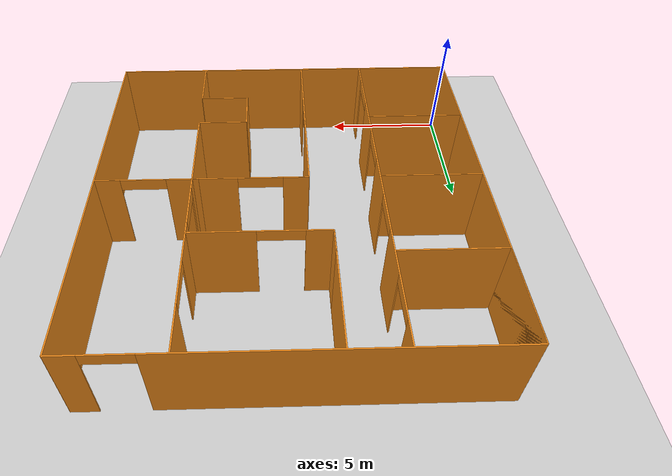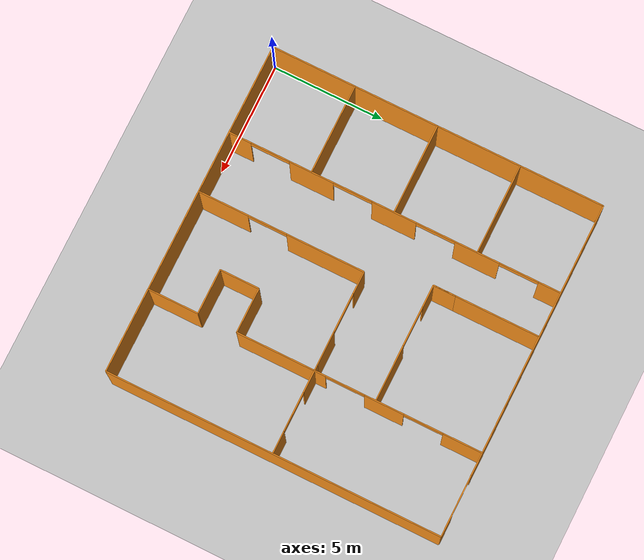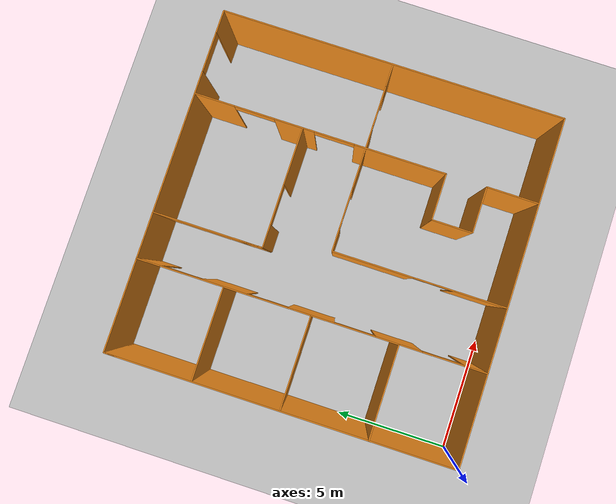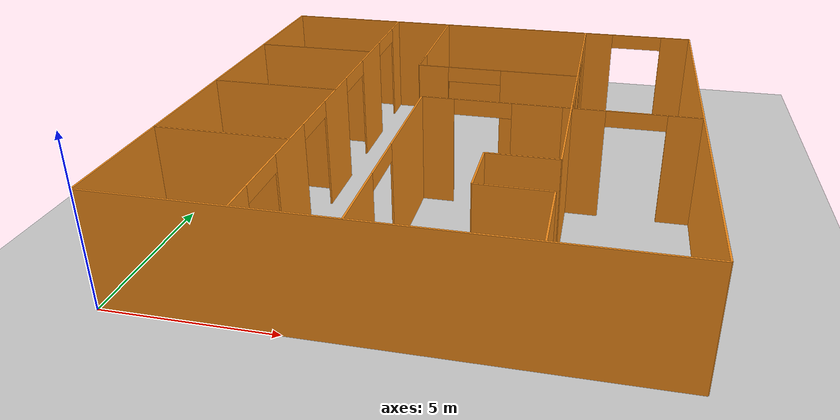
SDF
<sdf version="1.6">
  <world name="default">
    <model name="box_43">
  <pose frame="">11.25 8.875 3.25 0 0 -1.5707963267948966</pose>
  <link name="link">
    <inertial>
      <mass>1</mass>
      <inertia>
        <ixx>0</ixx>
        <ixy>0</ixy>
        <ixz>0</ixz>
        <iyy>0</iyy>
        <iyz>0</iyz>
        <izz>0</izz>
      </inertia>
    </inertial>
    <collision name="collision">
      <geometry>
        <box>
          <size>1.75 0.05 0.5</size>
        </box>
      </geometry>
      <max_contacts>10</max_contacts>
      <surface>
        <contact>
          <ode/>
        </contact>
        <bounce/>
        <friction>
          <torsional>
            <ode/>
          </torsional>
          <ode/>
        </friction>
      </surface>
    </collision>
    <visual name="visual">
      <geometry>
        <box>
          <size>1.75 0.05 0.5</size>
        </box>
      </geometry>
      <material>
        <script>
          <name>Gazebo/Orange</name>
          <uri>file://media/materials/scripts/gazebo.material</uri>
        </script>
      </material>
    </visual>
    <self_collide>0</self_collide>
    <enable_wind>0</enable_wind>
    <kinematic>0</kinematic>
  </link>
	<static>1</static>
</model><model name="box_42">
  <pose frame="">11.25 12.375 3.25 0 0 -1.5707963267948966</pose>
  <link name="link">
    <inertial>
      <mass>1</mass>
      <inertia>
        <ixx>0</ixx>
        <ixy>0</ixy>
        <ixz>0</ixz>
        <iyy>0</iyy>
        <iyz>0</iyz>
        <izz>0</izz>
      </inertia>
    </inertial>
    <collision name="collision">
      <geometry>
        <box>
          <size>1.75 0.05 0.5</size>
        </box>
      </geometry>
      <max_contacts>10</max_contacts>
      <surface>
        <contact>
          <ode/>
        </contact>
        <bounce/>
        <friction>
          <torsional>
            <ode/>
          </torsional>
          <ode/>
        </friction>
      </surface>
    </collision>
    <visual name="visual">
      <geometry>
        <box>
          <size>1.75 0.05 0.5</size>
        </box>
      </geometry>
      <material>
        <script>
          <name>Gazebo/Orange</name>
          <uri>file://media/materials/scripts/gazebo.material</uri>
        </script>
      </material>
    </visual>
    <self_collide>0</self_collide>
    <enable_wind>0</enable_wind>
    <kinematic>0</kinematic>
  </link>
	<static>1</static>
</model><model name="box_41">
  <pose frame="">4.0 13.125 3.25 0 0 -1.5707963267948966</pose>
  <link name="link">
    <inertial>
      <mass>1</mass>
      <inertia>
        <ixx>0</ixx>
        <ixy>0</ixy>
        <ixz>0</ixz>
        <iyy>0</iyy>
        <iyz>0</iyz>
        <izz>0</izz>
      </inertia>
    </inertial>
    <collision name="collision">
      <geometry>
        <box>
          <size>1.75 0.05 0.5</size>
        </box>
      </geometry>
      <max_contacts>10</max_contacts>
      <surface>
        <contact>
          <ode/>
        </contact>
        <bounce/>
        <friction>
          <torsional>
            <ode/>
          </torsional>
          <ode/>
        </friction>
      </surface>
    </collision>
    <visual name="visual">
      <geometry>
        <box>
          <size>1.75 0.05 0.5</size>
        </box>
      </geometry>
      <material>
        <script>
          <name>Gazebo/Orange</name>
          <uri>file://media/materials/scripts/gazebo.material</uri>
        </script>
      </material>
    </visual>
    <self_collide>0</self_collide>
    <enable_wind>0</enable_wind>
    <kinematic>0</kinematic>
  </link>
	<static>1</static>
</model><model name="box_40">
  <pose frame="">4.0 9.375 3.25 0 0 1.5707963267948966</pose>
  <link name="link">
    <inertial>
      <mass>1</mass>
      <inertia>
        <ixx>0</ixx>
        <ixy>0</ixy>
        <ixz>0</ixz>
        <iyy>0</iyy>
        <iyz>0</iyz>
        <izz>0</izz>
      </inertia>
    </inertial>
    <collision name="collision">
      <geometry>
        <box>
          <size>1.75 0.05 0.5</size>
        </box>
      </geometry>
      <max_contacts>10</max_contacts>
      <surface>
        <contact>
          <ode/>
        </contact>
        <bounce/>
        <friction>
          <torsional>
            <ode/>
          </torsional>
          <ode/>
        </friction>
      </surface>
    </collision>
    <visual name="visual">
      <geometry>
        <box>
          <size>1.75 0.05 0.5</size>
        </box>
      </geometry>
      <material>
        <script>
          <name>Gazebo/Orange</name>
          <uri>file://media/materials/scripts/gazebo.material</uri>
        </script>
      </material>
    </visual>
    <self_collide>0</self_collide>
    <enable_wind>0</enable_wind>
    <kinematic>0</kinematic>
  </link>
	<static>1</static>
</model><model name="box_39">
  <pose frame="">4.0 5.625 3.25 0 0 -1.5707963267948966</pose>
  <link name="link">
    <inertial>
      <mass>1</mass>
      <inertia>
        <ixx>0</ixx>
        <ixy>0</ixy>
        <ixz>0</ixz>
        <iyy>0</iyy>
        <iyz>0</iyz>
        <izz>0</izz>
      </inertia>
    </inertial>
    <collision name="collision">
      <geometry>
        <box>
          <size>1.75 0.05 0.5</size>
        </box>
      </geometry>
      <max_contacts>10</max_contacts>
      <surface>
        <contact>
          <ode/>
        </contact>
        <bounce/>
        <friction>
          <torsional>
            <ode/>
          </torsional>
          <ode/>
        </friction>
      </surface>
    </collision>
    <visual name="visual">
      <geometry>
        <box>
          <size>1.75 0.05 0.5</size>
        </box>
      </geometry>
      <material>
        <script>
          <name>Gazebo/Orange</name>
          <uri>file://media/materials/scripts/gazebo.material</uri>
        </script>
      </material>
    </visual>
    <self_collide>0</self_collide>
    <enable_wind>0</enable_wind>
    <kinematic>0</kinematic>
  </link>
	<static>1</static>
</model><model name="box_38">
  <pose frame="">4.0 1.875 3.25 0 0 1.5707963267948966</pose>
  <link name="link">
    <inertial>
      <mass>1</mass>
      <inertia>
        <ixx>0</ixx>
        <ixy>0</ixy>
        <ixz>0</ixz>
        <iyy>0</iyy>
        <iyz>0</iyz>
        <izz>0</izz>
      </inertia>
    </inertial>
    <collision name="collision">
      <geometry>
        <box>
          <size>1.75 0.05 0.5</size>
        </box>
      </geometry>
      <max_contacts>10</max_contacts>
      <surface>
        <contact>
          <ode/>
        </contact>
        <bounce/>
        <friction>
          <torsional>
            <ode/>
          </torsional>
          <ode/>
        </friction>
      </surface>
    </collision>
    <visual name="visual">
      <geometry>
        <box>
          <size>1.75 0.05 0.5</size>
        </box>
      </geometry>
      <material>
        <script>
          <name>Gazebo/Orange</name>
          <uri>file://media/materials/scripts/gazebo.material</uri>
        </script>
      </material>
    </visual>
    <self_collide>0</self_collide>
    <enable_wind>0</enable_wind>
    <kinematic>0</kinematic>
  </link>
	<static>1</static>
</model><model name="box_37">
  <pose frame="">8.625 7.5 3.25 0 0 -0.0</pose>
  <link name="link">
    <inertial>
      <mass>1</mass>
      <inertia>
        <ixx>0</ixx>
        <ixy>0</ixy>
        <ixz>0</ixz>
        <iyy>0</iyy>
        <iyz>0</iyz>
        <izz>0</izz>
      </inertia>
    </inertial>
    <collision name="collision">
      <geometry>
        <box>
          <size>1.75 0.05 0.5</size>
        </box>
      </geometry>
      <max_contacts>10</max_contacts>
      <surface>
        <contact>
          <ode/>
        </contact>
        <bounce/>
        <friction>
          <torsional>
            <ode/>
          </torsional>
          <ode/>
        </friction>
      </surface>
    </collision>
    <visual name="visual">
      <geometry>
        <box>
          <size>1.75 0.05 0.5</size>
        </box>
      </geometry>
      <material>
        <script>
          <name>Gazebo/Orange</name>
          <uri>file://media/materials/scripts/gazebo.material</uri>
        </script>
      </material>
    </visual>
    <self_collide>0</self_collide>
    <enable_wind>0</enable_wind>
    <kinematic>0</kinematic>
  </link>
	<static>1</static>
</model><model name="box_36">
  <pose frame="">7.875 10.25 3.25 0 0 -3.141592653589793</pose>
  <link name="link">
    <inertial>
      <mass>1</mass>
      <inertia>
        <ixx>0</ixx>
        <ixy>0</ixy>
        <ixz>0</ixz>
        <iyy>0</iyy>
        <iyz>0</iyz>
        <izz>0</izz>
      </inertia>
    </inertial>
    <collision name="collision">
      <geometry>
        <box>
          <size>1.75 0.05 0.5</size>
        </box>
      </geometry>
      <max_contacts>10</max_contacts>
      <surface>
        <contact>
          <ode/>
        </contact>
        <bounce/>
        <friction>
          <torsional>
            <ode/>
          </torsional>
          <ode/>
        </friction>
      </surface>
    </collision>
    <visual name="visual">
      <geometry>
        <box>
          <size>1.75 0.05 0.5</size>
        </box>
      </geometry>
      <material>
        <script>
          <name>Gazebo/Orange</name>
          <uri>file://media/materials/scripts/gazebo.material</uri>
        </script>
      </material>
    </visual>
    <self_collide>0</self_collide>
    <enable_wind>0</enable_wind>
    <kinematic>0</kinematic>
  </link>
	<static>1</static>
</model><model name="box_35">
  <pose frame="">6.75 3.125 3.25 0 0 1.5707963267948966</pose>
  <link name="link">
    <inertial>
      <mass>1</mass>
      <inertia>
        <ixx>0</ixx>
        <ixy>0</ixy>
        <ixz>0</ixz>
        <iyy>0</iyy>
        <iyz>0</iyz>
        <izz>0</izz>
      </inertia>
    </inertial>
    <collision name="collision">
      <geometry>
        <box>
          <size>1.75 0.05 0.5</size>
        </box>
      </geometry>
      <max_contacts>10</max_contacts>
      <surface>
        <contact>
          <ode/>
        </contact>
        <bounce/>
        <friction>
          <torsional>
            <ode/>
          </torsional>
          <ode/>
        </friction>
      </surface>
    </collision>
    <visual name="visual">
      <geometry>
        <box>
          <size>1.75 0.05 0.5</size>
        </box>
      </geometry>
      <material>
        <script>
          <name>Gazebo/Orange</name>
          <uri>file://media/materials/scripts/gazebo.material</uri>
        </script>
      </material>
    </visual>
    <self_collide>0</self_collide>
    <enable_wind>0</enable_wind>
    <kinematic>0</kinematic>
  </link>
	<static>1</static>
</model><model name="box_34">
  <pose frame="">13.125 7.5 3.25 0 0 -0.0</pose>
  <link name="link">
    <inertial>
      <mass>1</mass>
      <inertia>
        <ixx>0</ixx>
        <ixy>0</ixy>
        <ixz>0</ixz>
        <iyy>0</iyy>
        <iyz>0</iyz>
        <izz>0</izz>
      </inertia>
    </inertial>
    <collision name="collision">
      <geometry>
        <box>
          <size>1.75 0.05 0.5</size>
        </box>
      </geometry>
      <max_contacts>10</max_contacts>
      <surface>
        <contact>
          <ode/>
        </contact>
        <bounce/>
        <friction>
          <torsional>
            <ode/>
          </torsional>
          <ode/>
        </friction>
      </surface>
    </collision>
    <visual name="visual">
      <geometry>
        <box>
          <size>1.75 0.05 0.5</size>
        </box>
      </geometry>
      <material>
        <script>
          <name>Gazebo/Orange</name>
          <uri>file://media/materials/scripts/gazebo.material</uri>
        </script>
      </material>
    </visual>
    <self_collide>0</self_collide>
    <enable_wind>0</enable_wind>
    <kinematic>0</kinematic>
  </link>
	<static>1</static>
</model><model name="box_33">
  <pose frame="">13.125 15.0 3.25 0 0 -0.0</pose>
  <link name="link">
    <inertial>
      <mass>1</mass>
      <inertia>
        <ixx>0</ixx>
        <ixy>0</ixy>
        <ixz>0</ixz>
        <iyy>0</iyy>
        <iyz>0</iyz>
        <izz>0</izz>
      </inertia>
    </inertial>
    <collision name="collision">
      <geometry>
        <box>
          <size>1.75 0.05 0.5</size>
        </box>
      </geometry>
      <max_contacts>10</max_contacts>
      <surface>
        <contact>
          <ode/>
        </contact>
        <bounce/>
        <friction>
          <torsional>
            <ode/>
          </torsional>
          <ode/>
        </friction>
      </surface>
    </collision>
    <visual name="visual">
      <geometry>
        <box>
          <size>1.75 0.05 0.5</size>
        </box>
      </geometry>
      <material>
        <script>
          <name>Gazebo/Orange</name>
          <uri>file://media/materials/scripts/gazebo.material</uri>
        </script>
      </material>
    </visual>
    <self_collide>0</self_collide>
    <enable_wind>0</enable_wind>
    <kinematic>0</kinematic>
  </link>
	<static>1</static>
</model><model name="box_32">
  <pose frame="">11.25 1.125 1.75 0 0 1.5707963267948966</pose>
  <link name="link">
    <inertial>
      <mass>1</mass>
      <inertia>
        <ixx>0</ixx>
        <ixy>0</ixy>
        <ixz>0</ixz>
        <iyy>0</iyy>
        <iyz>0</iyz>
        <izz>0</izz>
      </inertia>
    </inertial>
    <collision name="collision">
      <geometry>
        <box>
          <size>2.25 0.05 3.5</size>
        </box>
      </geometry>
      <max_contacts>10</max_contacts>
      <surface>
        <contact>
          <ode/>
        </contact>
        <bounce/>
        <friction>
          <torsional>
            <ode/>
          </torsional>
          <ode/>
        </friction>
      </surface>
    </collision>
    <visual name="visual">
      <geometry>
        <box>
          <size>2.25 0.05 3.5</size>
        </box>
      </geometry>
      <material>
        <script>
          <name>Gazebo/Orange</name>
          <uri>file://media/materials/scripts/gazebo.material</uri>
        </script>
      </material>
    </visual>
    <self_collide>0</self_collide>
    <enable_wind>0</enable_wind>
    <kinematic>0</kinematic>
  </link>
	<static>1</static>
</model><model name="box_31">
  <pose frame="">10.25 2.25 1.75 0 0 -3.141592653589793</pose>
  <link name="link">
    <inertial>
      <mass>1</mass>
      <inertia>
        <ixx>0</ixx>
        <ixy>0</ixy>
        <ixz>0</ixz>
        <iyy>0</iyy>
        <iyz>0</iyz>
        <izz>0</izz>
      </inertia>
    </inertial>
    <collision name="collision">
      <geometry>
        <box>
          <size>2.0 0.05 3.5</size>
        </box>
      </geometry>
      <max_contacts>10</max_contacts>
      <surface>
        <contact>
          <ode/>
        </contact>
        <bounce/>
        <friction>
          <torsional>
            <ode/>
          </torsional>
          <ode/>
        </friction>
      </surface>
    </collision>
    <visual name="visual">
      <geometry>
        <box>
          <size>2.0 0.05 3.5</size>
        </box>
      </geometry>
      <material>
        <script>
          <name>Gazebo/Orange</name>
          <uri>file://media/materials/scripts/gazebo.material</uri>
        </script>
      </material>
    </visual>
    <self_collide>0</self_collide>
    <enable_wind>0</enable_wind>
    <kinematic>0</kinematic>
  </link>
	<static>1</static>
</model><model name="box_30">
  <pose frame="">9.25 3.125 1.75 0 0 1.5707963267948966</pose>
  <link name="link">
    <inertial>
      <mass>1</mass>
      <inertia>
        <ixx>0</ixx>
        <ixy>0</ixy>
        <ixz>0</ixz>
        <iyy>0</iyy>
        <iyz>0</iyz>
        <izz>0</izz>
      </inertia>
    </inertial>
    <collision name="collision">
      <geometry>
        <box>
          <size>1.75 0.05 3.5</size>
        </box>
      </geometry>
      <max_contacts>10</max_contacts>
      <surface>
        <contact>
          <ode/>
        </contact>
        <bounce/>
        <friction>
          <torsional>
            <ode/>
          </torsional>
          <ode/>
        </friction>
      </surface>
    </collision>
    <visual name="visual">
      <geometry>
        <box>
          <size>1.75 0.05 3.5</size>
        </box>
      </geometry>
      <material>
        <script>
          <name>Gazebo/Orange</name>
          <uri>file://media/materials/scripts/gazebo.material</uri>
        </script>
      </material>
    </visual>
    <self_collide>0</self_collide>
    <enable_wind>0</enable_wind>
    <kinematic>0</kinematic>
  </link>
	<static>1</static>
</model><model name="box_29">
  <pose frame="">10.25 4.0 1.75 0 0 -0.0</pose>
  <link name="link">
    <inertial>
      <mass>1</mass>
      <inertia>
        <ixx>0</ixx>
        <ixy>0</ixy>
        <ixz>0</ixz>
        <iyy>0</iyy>
        <iyz>0</iyz>
        <izz>0</izz>
      </inertia>
    </inertial>
    <collision name="collision">
      <geometry>
        <box>
          <size>2.0 0.05 3.5</size>
        </box>
      </geometry>
      <max_contacts>10</max_contacts>
      <surface>
        <contact>
          <ode/>
        </contact>
        <bounce/>
        <friction>
          <torsional>
            <ode/>
          </torsional>
          <ode/>
        </friction>
      </surface>
    </collision>
    <visual name="visual">
      <geometry>
        <box>
          <size>2.0 0.05 3.5</size>
        </box>
      </geometry>
      <material>
        <script>
          <name>Gazebo/Orange</name>
          <uri>file://media/materials/scripts/gazebo.material</uri>
        </script>
      </material>
    </visual>
    <self_collide>0</self_collide>
    <enable_wind>0</enable_wind>
    <kinematic>0</kinematic>
  </link>
	<static>1</static>
</model><model name="box_28">
  <pose frame="">11.25 6.0 1.75 0 0 1.5707963267948966</pose>
  <link name="link">
    <inertial>
      <mass>1</mass>
      <inertia>
        <ixx>0</ixx>
        <ixy>0</ixy>
        <ixz>0</ixz>
        <iyy>0</iyy>
        <iyz>0</iyz>
        <izz>0</izz>
      </inertia>
    </inertial>
    <collision name="collision">
      <geometry>
        <box>
          <size>4.0 0.05 3.5</size>
        </box>
      </geometry>
      <max_contacts>10</max_contacts>
      <surface>
        <contact>
          <ode/>
        </contact>
        <bounce/>
        <friction>
          <torsional>
            <ode/>
          </torsional>
          <ode/>
        </friction>
      </surface>
    </collision>
    <visual name="visual">
      <geometry>
        <box>
          <size>4.0 0.05 3.5</size>
        </box>
      </geometry>
      <material>
        <script>
          <name>Gazebo/Orange</name>
          <uri>file://media/materials/scripts/gazebo.material</uri>
        </script>
      </material>
    </visual>
    <self_collide>0</self_collide>
    <enable_wind>0</enable_wind>
    <kinematic>0</kinematic>
  </link>
	<static>1</static>
</model><model name="box_27">
  <pose frame="">10.0 10.25 1.75 0 0 -0.0</pose>
  <link name="link">
    <inertial>
      <mass>1</mass>
      <inertia>
        <ixx>0</ixx>
        <ixy>0</ixy>
        <ixz>0</ixz>
        <iyy>0</iyy>
        <iyz>0</iyz>
        <izz>0</izz>
      </inertia>
    </inertial>
    <collision name="collision">
      <geometry>
        <box>
          <size>2.5 0.05 3.5</size>
        </box>
      </geometry>
      <max_contacts>10</max_contacts>
      <surface>
        <contact>
          <ode/>
        </contact>
        <bounce/>
        <friction>
          <torsional>
            <ode/>
          </torsional>
          <ode/>
        </friction>
      </surface>
    </collision>
    <visual name="visual">
      <geometry>
        <box>
          <size>2.5 0.05 3.5</size>
        </box>
      </geometry>
      <material>
        <script>
          <name>Gazebo/Orange</name>
          <uri>file://media/materials/scripts/gazebo.material</uri>
        </script>
      </material>
    </visual>
    <self_collide>0</self_collide>
    <enable_wind>0</enable_wind>
    <kinematic>0</kinematic>
  </link>
	<static>1</static>
</model><model name="box_26">
  <pose frame="">11.25 10.625 1.75 0 0 -1.5707963267948966</pose>
  <link name="link">
    <inertial>
      <mass>1</mass>
      <inertia>
        <ixx>0</ixx>
        <ixy>0</ixy>
        <ixz>0</ixz>
        <iyy>0</iyy>
        <iyz>0</iyz>
        <izz>0</izz>
      </inertia>
    </inertial>
    <collision name="collision">
      <geometry>
        <box>
          <size>1.75 0.05 3.5</size>
        </box>
      </geometry>
      <max_contacts>10</max_contacts>
      <surface>
        <contact>
          <ode/>
        </contact>
        <bounce/>
        <friction>
          <torsional>
            <ode/>
          </torsional>
          <ode/>
        </friction>
      </surface>
    </collision>
    <visual name="visual">
      <geometry>
        <box>
          <size>1.75 0.05 3.5</size>
        </box>
      </geometry>
      <material>
        <script>
          <name>Gazebo/Orange</name>
          <uri>file://media/materials/scripts/gazebo.material</uri>
        </script>
      </material>
    </visual>
    <self_collide>0</self_collide>
    <enable_wind>0</enable_wind>
    <kinematic>0</kinematic>
  </link>
	<static>1</static>
</model><model name="box_25">
  <pose frame="">11.25 14.125 1.75 0 0 -1.5707963267948966</pose>
  <link name="link">
    <inertial>
      <mass>1</mass>
      <inertia>
        <ixx>0</ixx>
        <ixy>0</ixy>
        <ixz>0</ixz>
        <iyy>0</iyy>
        <iyz>0</iyz>
        <izz>0</izz>
      </inertia>
    </inertial>
    <collision name="collision">
      <geometry>
        <box>
          <size>1.75 0.05 3.5</size>
        </box>
      </geometry>
      <max_contacts>10</max_contacts>
      <surface>
        <contact>
          <ode/>
        </contact>
        <bounce/>
        <friction>
          <torsional>
            <ode/>
          </torsional>
          <ode/>
        </friction>
      </surface>
    </collision>
    <visual name="visual">
      <geometry>
        <box>
          <size>1.75 0.05 3.5</size>
        </box>
      </geometry>
      <material>
        <script>
          <name>Gazebo/Orange</name>
          <uri>file://media/materials/scripts/gazebo.material</uri>
        </script>
      </material>
    </visual>
    <self_collide>0</self_collide>
    <enable_wind>0</enable_wind>
    <kinematic>0</kinematic>
  </link>
	<static>1</static>
</model><model name="box_24">
  <pose frame="">2.0 11.25 1.75 0 0 -0.0</pose>
  <link name="link">
    <inertial>
      <mass>1</mass>
      <inertia>
        <ixx>0</ixx>
        <ixy>0</ixy>
        <ixz>0</ixz>
        <iyy>0</iyy>
        <iyz>0</iyz>
        <izz>0</izz>
      </inertia>
    </inertial>
    <collision name="collision">
      <geometry>
        <box>
          <size>4.0 0.05 3.5</size>
        </box>
      </geometry>
      <max_contacts>10</max_contacts>
      <surface>
        <contact>
          <ode/>
        </contact>
        <bounce/>
        <friction>
          <torsional>
            <ode/>
          </torsional>
          <ode/>
        </friction>
      </surface>
    </collision>
    <visual name="visual">
      <geometry>
        <box>
          <size>4.0 0.05 3.5</size>
        </box>
      </geometry>
      <material>
        <script>
          <name>Gazebo/Orange</name>
          <uri>file://media/materials/scripts/gazebo.material</uri>
        </script>
      </material>
    </visual>
    <self_collide>0</self_collide>
    <enable_wind>0</enable_wind>
    <kinematic>0</kinematic>
  </link>
	<static>1</static>
</model><model name="box_23">
  <pose frame="">2.0 7.5 1.75 0 0 -0.0</pose>
  <link name="link">
    <inertial>
      <mass>1</mass>
      <inertia>
        <ixx>0</ixx>
        <ixy>0</ixy>
        <ixz>0</ixz>
        <iyy>0</iyy>
        <iyz>0</iyz>
        <izz>0</izz>
      </inertia>
    </inertial>
    <collision name="collision">
      <geometry>
        <box>
          <size>4.0 0.05 3.5</size>
        </box>
      </geometry>
      <max_contacts>10</max_contacts>
      <surface>
        <contact>
          <ode/>
        </contact>
        <bounce/>
        <friction>
          <torsional>
            <ode/>
          </torsional>
          <ode/>
        </friction>
      </surface>
    </collision>
    <visual name="visual">
      <geometry>
        <box>
          <size>4.0 0.05 3.5</size>
        </box>
      </geometry>
      <material>
        <script>
          <name>Gazebo/Orange</name>
          <uri>file://media/materials/scripts/gazebo.material</uri>
        </script>
      </material>
    </visual>
    <self_collide>0</self_collide>
    <enable_wind>0</enable_wind>
    <kinematic>0</kinematic>
  </link>
	<static>1</static>
</model><model name="box_22">
  <pose frame="">2.0 3.75 1.75 0 0 -0.0</pose>
  <link name="link">
    <inertial>
      <mass>1</mass>
      <inertia>
        <ixx>0</ixx>
        <ixy>0</ixy>
        <ixz>0</ixz>
        <iyy>0</iyy>
        <iyz>0</iyz>
        <izz>0</izz>
      </inertia>
    </inertial>
    <collision name="collision">
      <geometry>
        <box>
          <size>4.0 0.05 3.5</size>
        </box>
      </geometry>
      <max_contacts>10</max_contacts>
      <surface>
        <contact>
          <ode/>
        </contact>
        <bounce/>
        <friction>
          <torsional>
            <ode/>
          </torsional>
          <ode/>
        </friction>
      </surface>
    </collision>
    <visual name="visual">
      <geometry>
        <box>
          <size>4.0 0.05 3.5</size>
        </box>
      </geometry>
      <material>
        <script>
          <name>Gazebo/Orange</name>
          <uri>file://media/materials/scripts/gazebo.material</uri>
        </script>
      </material>
    </visual>
    <self_collide>0</self_collide>
    <enable_wind>0</enable_wind>
    <kinematic>0</kinematic>
  </link>
	<static>1</static>
</model><model name="box_21">
  <pose frame="">4.0 0.5 1.75 0 0 1.5707963267948966</pose>
  <link name="link">
    <inertial>
      <mass>1</mass>
      <inertia>
        <ixx>0</ixx>
        <ixy>0</ixy>
        <ixz>0</ixz>
        <iyy>0</iyy>
        <iyz>0</iyz>
        <izz>0</izz>
      </inertia>
    </inertial>
    <collision name="collision">
      <geometry>
        <box>
          <size>1.0 0.05 3.5</size>
        </box>
      </geometry>
      <max_contacts>10</max_contacts>
      <surface>
        <contact>
          <ode/>
        </contact>
        <bounce/>
        <friction>
          <torsional>
            <ode/>
          </torsional>
          <ode/>
        </friction>
      </surface>
    </collision>
    <visual name="visual">
      <geometry>
        <box>
          <size>1.0 0.05 3.5</size>
        </box>
      </geometry>
      <material>
        <script>
          <name>Gazebo/Orange</name>
          <uri>file://media/materials/scripts/gazebo.material</uri>
        </script>
      </material>
    </visual>
    <self_collide>0</self_collide>
    <enable_wind>0</enable_wind>
    <kinematic>0</kinematic>
  </link>
	<static>1</static>
</model><model name="box_20">
  <pose frame="">4.0 3.75 1.75 0 0 1.5707963267948966</pose>
  <link name="link">
    <inertial>
      <mass>1</mass>
      <inertia>
        <ixx>0</ixx>
        <ixy>0</ixy>
        <ixz>0</ixz>
        <iyy>0</iyy>
        <iyz>0</iyz>
        <izz>0</izz>
      </inertia>
    </inertial>
    <collision name="collision">
      <geometry>
        <box>
          <size>2.0 0.05 3.5</size>
        </box>
      </geometry>
      <max_contacts>10</max_contacts>
      <surface>
        <contact>
          <ode/>
        </contact>
        <bounce/>
        <friction>
          <torsional>
            <ode/>
          </torsional>
          <ode/>
        </friction>
      </surface>
    </collision>
    <visual name="visual">
      <geometry>
        <box>
          <size>2.0 0.05 3.5</size>
        </box>
      </geometry>
      <material>
        <script>
          <name>Gazebo/Orange</name>
          <uri>file://media/materials/scripts/gazebo.material</uri>
        </script>
      </material>
    </visual>
    <self_collide>0</self_collide>
    <enable_wind>0</enable_wind>
    <kinematic>0</kinematic>
  </link>
	<static>1</static>
</model><model name="box_19">
  <pose frame="">4.0 7.5 1.75 0 0 1.5707963267948966</pose>
  <link name="link">
    <inertial>
      <mass>1</mass>
      <inertia>
        <ixx>0</ixx>
        <ixy>0</ixy>
        <ixz>0</ixz>
        <iyy>0</iyy>
        <iyz>0</iyz>
        <izz>0</izz>
      </inertia>
    </inertial>
    <collision name="collision">
      <geometry>
        <box>
          <size>2.0 0.05 3.5</size>
        </box>
      </geometry>
      <max_contacts>10</max_contacts>
      <surface>
        <contact>
          <ode/>
        </contact>
        <bounce/>
        <friction>
          <torsional>
            <ode/>
          </torsional>
          <ode/>
        </friction>
      </surface>
    </collision>
    <visual name="visual">
      <geometry>
        <box>
          <size>2.0 0.05 3.5</size>
        </box>
      </geometry>
      <material>
        <script>
          <name>Gazebo/Orange</name>
          <uri>file://media/materials/scripts/gazebo.material</uri>
        </script>
      </material>
    </visual>
    <self_collide>0</self_collide>
    <enable_wind>0</enable_wind>
    <kinematic>0</kinematic>
  </link>
	<static>1</static>
</model><model name="box_18">
  <pose frame="">4.0 11.25 1.75 0 0 1.5707963267948966</pose>
  <link name="link">
    <inertial>
      <mass>1</mass>
      <inertia>
        <ixx>0</ixx>
        <ixy>0</ixy>
        <ixz>0</ixz>
        <iyy>0</iyy>
        <iyz>0</iyz>
        <izz>0</izz>
      </inertia>
    </inertial>
    <collision name="collision">
      <geometry>
        <box>
          <size>2.0 0.05 3.5</size>
        </box>
      </geometry>
      <max_contacts>10</max_contacts>
      <surface>
        <contact>
          <ode/>
        </contact>
        <bounce/>
        <friction>
          <torsional>
            <ode/>
          </torsional>
          <ode/>
        </friction>
      </surface>
    </collision>
    <visual name="visual">
      <geometry>
        <box>
          <size>2.0 0.05 3.5</size>
        </box>
      </geometry>
      <material>
        <script>
          <name>Gazebo/Orange</name>
          <uri>file://media/materials/scripts/gazebo.material</uri>
        </script>
      </material>
    </visual>
    <self_collide>0</self_collide>
    <enable_wind>0</enable_wind>
    <kinematic>0</kinematic>
  </link>
	<static>1</static>
</model><model name="box_17">
  <pose frame="">4.0 14.5 1.75 0 0 1.5707963267948966</pose>
  <link name="link">
    <inertial>
      <mass>1</mass>
      <inertia>
        <ixx>0</ixx>
        <ixy>0</ixy>
        <ixz>0</ixz>
        <iyy>0</iyy>
        <iyz>0</iyz>
        <izz>0</izz>
      </inertia>
    </inertial>
    <collision name="collision">
      <geometry>
        <box>
          <size>1.0 0.05 3.5</size>
        </box>
      </geometry>
      <max_contacts>10</max_contacts>
      <surface>
        <contact>
          <ode/>
        </contact>
        <bounce/>
        <friction>
          <torsional>
            <ode/>
          </torsional>
          <ode/>
        </friction>
      </surface>
    </collision>
    <visual name="visual">
      <geometry>
        <box>
          <size>1.0 0.05 3.5</size>
        </box>
      </geometry>
      <material>
        <script>
          <name>Gazebo/Orange</name>
          <uri>file://media/materials/scripts/gazebo.material</uri>
        </script>
      </material>
    </visual>
    <self_collide>0</self_collide>
    <enable_wind>0</enable_wind>
    <kinematic>0</kinematic>
  </link>
	<static>1</static>
</model><model name="box_16">
  <pose frame="">6.75 5.75 1.75 0 0 1.5707963267948966</pose>
  <link name="link">
    <inertial>
      <mass>1</mass>
      <inertia>
        <ixx>0</ixx>
        <ixy>0</ixy>
        <ixz>0</ixz>
        <iyy>0</iyy>
        <iyz>0</iyz>
        <izz>0</izz>
      </inertia>
    </inertial>
    <collision name="collision">
      <geometry>
        <box>
          <size>3.5 0.05 3.5</size>
        </box>
      </geometry>
      <max_contacts>10</max_contacts>
      <surface>
        <contact>
          <ode/>
        </contact>
        <bounce/>
        <friction>
          <torsional>
            <ode/>
          </torsional>
          <ode/>
        </friction>
      </surface>
    </collision>
    <visual name="visual">
      <geometry>
        <box>
          <size>3.5 0.05 3.5</size>
        </box>
      </geometry>
      <material>
        <script>
          <name>Gazebo/Orange</name>
          <uri>file://media/materials/scripts/gazebo.material</uri>
        </script>
      </material>
    </visual>
    <self_collide>0</self_collide>
    <enable_wind>0</enable_wind>
    <kinematic>0</kinematic>
  </link>
	<static>1</static>
</model><model name="box_15">
  <pose frame="">7.25 7.5 1.75 0 0 -0.0</pose>
  <link name="link">
    <inertial>
      <mass>1</mass>
      <inertia>
        <ixx>0</ixx>
        <ixy>0</ixy>
        <ixz>0</ixz>
        <iyy>0</iyy>
        <iyz>0</iyz>
        <izz>0</izz>
      </inertia>
    </inertial>
    <collision name="collision">
      <geometry>
        <box>
          <size>1.0 0.05 3.5</size>
        </box>
      </geometry>
      <max_contacts>10</max_contacts>
      <surface>
        <contact>
          <ode/>
        </contact>
        <bounce/>
        <friction>
          <torsional>
            <ode/>
          </torsional>
          <ode/>
        </friction>
      </surface>
    </collision>
    <visual name="visual">
      <geometry>
        <box>
          <size>1.0 0.05 3.5</size>
        </box>
      </geometry>
      <material>
        <script>
          <name>Gazebo/Orange</name>
          <uri>file://media/materials/scripts/gazebo.material</uri>
        </script>
      </material>
    </visual>
    <self_collide>0</self_collide>
    <enable_wind>0</enable_wind>
    <kinematic>0</kinematic>
  </link>
	<static>1</static>
</model><model name="box_14">
  <pose frame="">10.25 7.5 1.75 0 0 -3.141592653589793</pose>
  <link name="link">
    <inertial>
      <mass>1</mass>
      <inertia>
        <ixx>0</ixx>
        <ixy>0</ixy>
        <ixz>0</ixz>
        <iyy>0</iyy>
        <iyz>0</iyz>
        <izz>0</izz>
      </inertia>
    </inertial>
    <collision name="collision">
      <geometry>
        <box>
          <size>1.5 0.05 3.5</size>
        </box>
      </geometry>
      <max_contacts>10</max_contacts>
      <surface>
        <contact>
          <ode/>
        </contact>
        <bounce/>
        <friction>
          <torsional>
            <ode/>
          </torsional>
          <ode/>
        </friction>
      </surface>
    </collision>
    <visual name="visual">
      <geometry>
        <box>
          <size>1.5 0.05 3.5</size>
        </box>
      </geometry>
      <material>
        <script>
          <name>Gazebo/Orange</name>
          <uri>file://media/materials/scripts/gazebo.material</uri>
        </script>
      </material>
    </visual>
    <self_collide>0</self_collide>
    <enable_wind>0</enable_wind>
    <kinematic>0</kinematic>
  </link>
	<static>1</static>
</model><model name="box_13">
  <pose frame="">6.5 10.25 1.75 0 0 -3.141592653589793</pose>
  <link name="link">
    <inertial>
      <mass>1</mass>
      <inertia>
        <ixx>0</ixx>
        <ixy>0</ixy>
        <ixz>0</ixz>
        <iyy>0</iyy>
        <iyz>0</iyz>
        <izz>0</izz>
      </inertia>
    </inertial>
    <collision name="collision">
      <geometry>
        <box>
          <size>1.0 0.05 3.5</size>
        </box>
      </geometry>
      <max_contacts>10</max_contacts>
      <surface>
        <contact>
          <ode/>
        </contact>
        <bounce/>
        <friction>
          <torsional>
            <ode/>
          </torsional>
          <ode/>
        </friction>
      </surface>
    </collision>
    <visual name="visual">
      <geometry>
        <box>
          <size>1.0 0.05 3.5</size>
        </box>
      </geometry>
      <material>
        <script>
          <name>Gazebo/Orange</name>
          <uri>file://media/materials/scripts/gazebo.material</uri>
        </script>
      </material>
    </visual>
    <self_collide>0</self_collide>
    <enable_wind>0</enable_wind>
    <kinematic>0</kinematic>
  </link>
	<static>1</static>
</model><model name="box_12">
  <pose frame="">6.75 1.125 1.75 0 0 1.5707963267948966</pose>
  <link name="link">
    <inertial>
      <mass>1</mass>
      <inertia>
        <ixx>0</ixx>
        <ixy>0</ixy>
        <ixz>0</ixz>
        <iyy>0</iyy>
        <iyz>0</iyz>
        <izz>0</izz>
      </inertia>
    </inertial>
    <collision name="collision">
      <geometry>
        <box>
          <size>2.25 0.05 3.5</size>
        </box>
      </geometry>
      <max_contacts>10</max_contacts>
      <surface>
        <contact>
          <ode/>
        </contact>
        <bounce/>
        <friction>
          <torsional>
            <ode/>
          </torsional>
          <ode/>
        </friction>
      </surface>
    </collision>
    <visual name="visual">
      <geometry>
        <box>
          <size>2.25 0.05 3.5</size>
        </box>
      </geometry>
      <material>
        <script>
          <name>Gazebo/Orange</name>
          <uri>file://media/materials/scripts/gazebo.material</uri>
        </script>
      </material>
    </visual>
    <self_collide>0</self_collide>
    <enable_wind>0</enable_wind>
    <kinematic>0</kinematic>
  </link>
	<static>1</static>
</model><model name="box_11">
  <pose frame="">6.125 15.0 1.75 0 0 -0.0</pose>
  <link name="link">
    <inertial>
      <mass>1</mass>
      <inertia>
        <ixx>0</ixx>
        <ixy>0</ixy>
        <ixz>0</ixz>
        <iyy>0</iyy>
        <iyz>0</iyz>
        <izz>0</izz>
      </inertia>
    </inertial>
    <collision name="collision">
      <geometry>
        <box>
          <size>12.25 0.05 3.5</size>
        </box>
      </geometry>
      <max_contacts>10</max_contacts>
      <surface>
        <contact>
          <ode/>
        </contact>
        <bounce/>
        <friction>
          <torsional>
            <ode/>
          </torsional>
          <ode/>
        </friction>
      </surface>
    </collision>
    <visual name="visual">
      <geometry>
        <box>
          <size>12.25 0.05 3.5</size>
        </box>
      </geometry>
      <material>
        <script>
          <name>Gazebo/Orange</name>
          <uri>file://media/materials/scripts/gazebo.material</uri>
        </script>
      </material>
    </visual>
    <self_collide>0</self_collide>
    <enable_wind>0</enable_wind>
    <kinematic>0</kinematic>
  </link>
	<static>1</static>
</model><model name="box_10">
  <pose frame="">11.625 7.5 1.75 0 0 -0.0</pose>
  <link name="link">
    <inertial>
      <mass>1</mass>
      <inertia>
        <ixx>0</ixx>
        <ixy>0</ixy>
        <ixz>0</ixz>
        <iyy>0</iyy>
        <iyz>0</iyz>
        <izz>0</izz>
      </inertia>
    </inertial>
    <collision name="collision">
      <geometry>
        <box>
          <size>1.25 0.05 3.5</size>
        </box>
      </geometry>
      <max_contacts>10</max_contacts>
      <surface>
        <contact>
          <ode/>
        </contact>
        <bounce/>
        <friction>
          <torsional>
            <ode/>
          </torsional>
          <ode/>
        </friction>
      </surface>
    </collision>
    <visual name="visual">
      <geometry>
        <box>
          <size>1.25 0.05 3.5</size>
        </box>
      </geometry>
      <material>
        <script>
          <name>Gazebo/Orange</name>
          <uri>file://media/materials/scripts/gazebo.material</uri>
        </script>
      </material>
    </visual>
    <self_collide>0</self_collide>
    <enable_wind>0</enable_wind>
    <kinematic>0</kinematic>
  </link>
	<static>1</static>
</model><model name="box_9">
  <pose frame="">14.5 7.5 1.75 0 0 -0.0</pose>
  <link name="link">
    <inertial>
      <mass>1</mass>
      <inertia>
        <ixx>0</ixx>
        <ixy>0</ixy>
        <ixz>0</ixz>
        <iyy>0</iyy>
        <iyz>0</iyz>
        <izz>0</izz>
      </inertia>
    </inertial>
    <collision name="collision">
      <geometry>
        <box>
          <size>1.0 0.05 3.5</size>
        </box>
      </geometry>
      <max_contacts>10</max_contacts>
      <surface>
        <contact>
          <ode/>
        </contact>
        <bounce/>
        <friction>
          <torsional>
            <ode/>
          </torsional>
          <ode/>
        </friction>
      </surface>
    </collision>
    <visual name="visual">
      <geometry>
        <box>
          <size>1.0 0.05 3.5</size>
        </box>
      </geometry>
      <material>
        <script>
          <name>Gazebo/Orange</name>
          <uri>file://media/materials/scripts/gazebo.material</uri>
        </script>
      </material>
    </visual>
    <self_collide>0</self_collide>
    <enable_wind>0</enable_wind>
    <kinematic>0</kinematic>
  </link>
	<static>1</static>
</model><model name="box_8">
  <pose frame="">6.0 10.75 1.75 0 0 1.5707963267948966</pose>
  <link name="link">
    <inertial>
      <mass>1</mass>
      <inertia>
        <ixx>0</ixx>
        <ixy>0</ixy>
        <ixz>0</ixz>
        <iyy>0</iyy>
        <iyz>0</iyz>
        <izz>0</izz>
      </inertia>
    </inertial>
    <collision name="collision">
      <geometry>
        <box>
          <size>1.0 0.05 3.5</size>
        </box>
      </geometry>
      <max_contacts>10</max_contacts>
      <surface>
        <contact>
          <ode/>
        </contact>
        <bounce/>
        <friction>
          <torsional>
            <ode/>
          </torsional>
          <ode/>
        </friction>
      </surface>
    </collision>
    <visual name="visual">
      <geometry>
        <box>
          <size>1.0 0.05 3.5</size>
        </box>
      </geometry>
      <material>
        <script>
          <name>Gazebo/Orange</name>
          <uri>file://media/materials/scripts/gazebo.material</uri>
        </script>
      </material>
    </visual>
    <self_collide>0</self_collide>
    <enable_wind>0</enable_wind>
    <kinematic>0</kinematic>
  </link>
	<static>1</static>
</model><model name="box_7">
  <pose frame="">6.0 10.75 1.75 0 0 -1.5707963267948966</pose>
  <link name="link">
    <inertial>
      <mass>1</mass>
      <inertia>
        <ixx>0</ixx>
        <ixy>0</ixy>
        <ixz>0</ixz>
        <iyy>0</iyy>
        <iyz>0</iyz>
        <izz>0</izz>
      </inertia>
    </inertial>
    <collision name="collision">
      <geometry>
        <box>
          <size>1.0 0.05 3.5</size>
        </box>
      </geometry>
      <max_contacts>10</max_contacts>
      <surface>
        <contact>
          <ode/>
        </contact>
        <bounce/>
        <friction>
          <torsional>
            <ode/>
          </torsional>
          <ode/>
        </friction>
      </surface>
    </collision>
    <visual name="visual">
      <geometry>
        <box>
          <size>1.0 0.05 3.5</size>
        </box>
      </geometry>
      <material>
        <script>
          <name>Gazebo/Orange</name>
          <uri>file://media/materials/scripts/gazebo.material</uri>
        </script>
      </material>
    </visual>
    <self_collide>0</self_collide>
    <enable_wind>0</enable_wind>
    <kinematic>0</kinematic>
  </link>
	<static>1</static>
</model><model name="box_6">
  <pose frame="">6.0 13.125 1.75 0 0 1.5707963267948966</pose>
  <link name="link">
    <inertial>
      <mass>1</mass>
      <inertia>
        <ixx>0</ixx>
        <ixy>0</ixy>
        <ixz>0</ixz>
        <iyy>0</iyy>
        <iyz>0</iyz>
        <izz>0</izz>
      </inertia>
    </inertial>
    <collision name="collision">
      <geometry>
        <box>
          <size>3.75 0.05 3.5</size>
        </box>
      </geometry>
      <max_contacts>10</max_contacts>
      <surface>
        <contact>
          <ode/>
        </contact>
        <bounce/>
        <friction>
          <torsional>
            <ode/>
          </torsional>
          <ode/>
        </friction>
      </surface>
    </collision>
    <visual name="visual">
      <geometry>
        <box>
          <size>3.75 0.05 3.5</size>
        </box>
      </geometry>
      <material>
        <script>
          <name>Gazebo/Orange</name>
          <uri>file://media/materials/scripts/gazebo.material</uri>
        </script>
      </material>
    </visual>
    <self_collide>0</self_collide>
    <enable_wind>0</enable_wind>
    <kinematic>0</kinematic>
  </link>
	<static>1</static>
</model><model name="box_5">
  <pose frame="">0.0 13.125 1.75 0 0 1.5707963267948966</pose>
  <link name="link">
    <inertial>
      <mass>1</mass>
      <inertia>
        <ixx>0</ixx>
        <ixy>0</ixy>
        <ixz>0</ixz>
        <iyy>0</iyy>
        <iyz>0</iyz>
        <izz>0</izz>
      </inertia>
    </inertial>
    <collision name="collision">
      <geometry>
        <box>
          <size>3.75 0.05 3.5</size>
        </box>
      </geometry>
      <max_contacts>10</max_contacts>
      <surface>
        <contact>
          <ode/>
        </contact>
        <bounce/>
        <friction>
          <torsional>
            <ode/>
          </torsional>
          <ode/>
        </friction>
      </surface>
    </collision>
    <visual name="visual">
      <geometry>
        <box>
          <size>3.75 0.05 3.5</size>
        </box>
      </geometry>
      <material>
        <script>
          <name>Gazebo/Orange</name>
          <uri>file://media/materials/scripts/gazebo.material</uri>
        </script>
      </material>
    </visual>
    <self_collide>0</self_collide>
    <enable_wind>0</enable_wind>
    <kinematic>0</kinematic>
  </link>
	<static>1</static>
</model><model name="box_4">
  <pose frame="">0.0 7.5 1.75 0 0 -1.5707963267948966</pose>
  <link name="link">
    <inertial>
      <mass>1</mass>
      <inertia>
        <ixx>0</ixx>
        <ixy>0</ixy>
        <ixz>0</ixz>
        <iyy>0</iyy>
        <iyz>0</iyz>
        <izz>0</izz>
      </inertia>
    </inertial>
    <collision name="collision">
      <geometry>
        <box>
          <size>15.0 0.05 3.5</size>
        </box>
      </geometry>
      <max_contacts>10</max_contacts>
      <surface>
        <contact>
          <ode/>
        </contact>
        <bounce/>
        <friction>
          <torsional>
            <ode/>
          </torsional>
          <ode/>
        </friction>
      </surface>
    </collision>
    <visual name="visual">
      <geometry>
        <box>
          <size>15.0 0.05 3.5</size>
        </box>
      </geometry>
      <material>
        <script>
          <name>Gazebo/Orange</name>
          <uri>file://media/materials/scripts/gazebo.material</uri>
        </script>
      </material>
    </visual>
    <self_collide>0</self_collide>
    <enable_wind>0</enable_wind>
    <kinematic>0</kinematic>
  </link>
	<static>1</static>
</model><model name="box_3">
  <pose frame="">14.5 15.0 1.75 0 0 -0.0</pose>
  <link name="link">
    <inertial>
      <mass>1</mass>
      <inertia>
        <ixx>0</ixx>
        <ixy>0</ixy>
        <ixz>0</ixz>
        <iyy>0</iyy>
        <iyz>0</iyz>
        <izz>0</izz>
      </inertia>
    </inertial>
    <collision name="collision">
      <geometry>
        <box>
          <size>1.0 0.05 3.5</size>
        </box>
      </geometry>
      <max_contacts>10</max_contacts>
      <surface>
        <contact>
          <ode/>
        </contact>
        <bounce/>
        <friction>
          <torsional>
            <ode/>
          </torsional>
          <ode/>
        </friction>
      </surface>
    </collision>
    <visual name="visual">
      <geometry>
        <box>
          <size>1.0 0.05 3.5</size>
        </box>
      </geometry>
      <material>
        <script>
          <name>Gazebo/Orange</name>
          <uri>file://media/materials/scripts/gazebo.material</uri>
        </script>
      </material>
    </visual>
    <self_collide>0</self_collide>
    <enable_wind>0</enable_wind>
    <kinematic>0</kinematic>
  </link>
	<static>1</static>
</model><model name="box_2">
  <pose frame="">7.5 0.0 1.75 0 0 -0.0</pose>
  <link name="link">
    <inertial>
      <mass>1</mass>
      <inertia>
        <ixx>0</ixx>
        <ixy>0</ixy>
        <ixz>0</ixz>
        <iyy>0</iyy>
        <iyz>0</iyz>
        <izz>0</izz>
      </inertia>
    </inertial>
    <collision name="collision">
      <geometry>
        <box>
          <size>15.0 0.05 3.5</size>
        </box>
      </geometry>
      <max_contacts>10</max_contacts>
      <surface>
        <contact>
          <ode/>
        </contact>
        <bounce/>
        <friction>
          <torsional>
            <ode/>
          </torsional>
          <ode/>
        </friction>
      </surface>
    </collision>
    <visual name="visual">
      <geometry>
        <box>
          <size>15.0 0.05 3.5</size>
        </box>
      </geometry>
      <material>
        <script>
          <name>Gazebo/Orange</name>
          <uri>file://media/materials/scripts/gazebo.material</uri>
        </script>
      </material>
    </visual>
    <self_collide>0</self_collide>
    <enable_wind>0</enable_wind>
    <kinematic>0</kinematic>
  </link>
	<static>1</static>
</model><model name="box_1">
  <pose frame="">15.0 7.5 1.75 0 0 1.5707963267948966</pose>
  <link name="link">
    <inertial>
      <mass>1</mass>
      <inertia>
        <ixx>0</ixx>
        <ixy>0</ixy>
        <ixz>0</ixz>
        <iyy>0</iyy>
        <iyz>0</iyz>
        <izz>0</izz>
      </inertia>
    </inertial>
    <collision name="collision">
      <geometry>
        <box>
          <size>15.0 0.05 3.5</size>
        </box>
      </geometry>
      <max_contacts>10</max_contacts>
      <surface>
        <contact>
          <ode/>
        </contact>
        <bounce/>
        <friction>
          <torsional>
            <ode/>
          </torsional>
          <ode/>
        </friction>
      </surface>
    </collision>
    <visual name="visual">
      <geometry>
        <box>
          <size>15.0 0.05 3.5</size>
        </box>
      </geometry>
      <material>
        <script>
          <name>Gazebo/Orange</name>
          <uri>file://media/materials/scripts/gazebo.material</uri>
        </script>
      </material>
    </visual>
    <self_collide>0</self_collide>
    <enable_wind>0</enable_wind>
    <kinematic>0</kinematic>
  </link>
	<static>1</static>
</model><light name="sun" type="directional">
      <cast_shadows>1</cast_shadows>
      <pose frame="">0 0 10 0 -0 0</pose>
      <diffuse>0.8 0.8 0.8 1</diffuse>
      <specular>0.2 0.2 0.2 1</specular>
      <attenuation>
        <range>1000</range>
        <constant>0.9</constant>
        <linear>0.01</linear>
        <quadratic>0.001</quadratic>
      </attenuation>
      <direction>-0.5 0.1 -0.9</direction>
    </light>
    <model name="ground_plane">
      <static>1</static>
      <link name="link">
        <collision name="collision">
          <geometry>
            <plane>
              <normal>0 0 1</normal>
              <size>100 100</size>
            </plane>
          </geometry>
          <surface>
            <contact>
              <collide_bitmask>65535</collide_bitmask>
              <ode/>
            </contact>
            <friction>
              <ode>
                <mu>100</mu>
                <mu2>50</mu2>
              </ode>
              <torsional>
                <ode/>
              </torsional>
            </friction>
            <bounce/>
          </surface>
          <max_contacts>10</max_contacts>
        </collision>
        <visual name="visual">
          <cast_shadows>0</cast_shadows>
          <geometry>
            <plane>
              <normal>0 0 1</normal>
              <size>100 100</size>
            </plane>
          </geometry>
          <material>
            <script>
              <uri>file://media/materials/scripts/gazebo.material</uri>
              <name>Gazebo/Grey</name>
            </script>
          </material>
        </visual>
        <self_collide>0</self_collide>
        <enable_wind>0</enable_wind>
        <kinematic>0</kinematic>
      </link>
    </model>
    <gravity>0 0 -9.8</gravity>
    <magnetic_field>6e-06 2.3e-05 -4.2e-05</magnetic_field>
    <atmosphere type="adiabatic"/>
    <physics name="default_physics" default="0" type="ode">
      <max_step_size>0.001</max_step_size>
      <real_time_factor>1</real_time_factor>
      <real_time_update_rate>1000</real_time_update_rate>
    </physics>
    <scene>
      <ambient>0.4 0.4 0.4 1</ambient>
      <background>0.7 0.7 0.7 1</background>
      <shadows>1</shadows>
    </scene>
    <audio>
      <device>default</device>
    </audio>
    <wind/>
    <spherical_coordinates>
      <surface_model>EARTH_WGS84</surface_model>
      <latitude_deg>0</latitude_deg>
      <longitude_deg>0</longitude_deg>
      <elevation>0</elevation>
      <heading_deg>0</heading_deg>
    </spherical_coordinates>
  </world>
</sdf>
